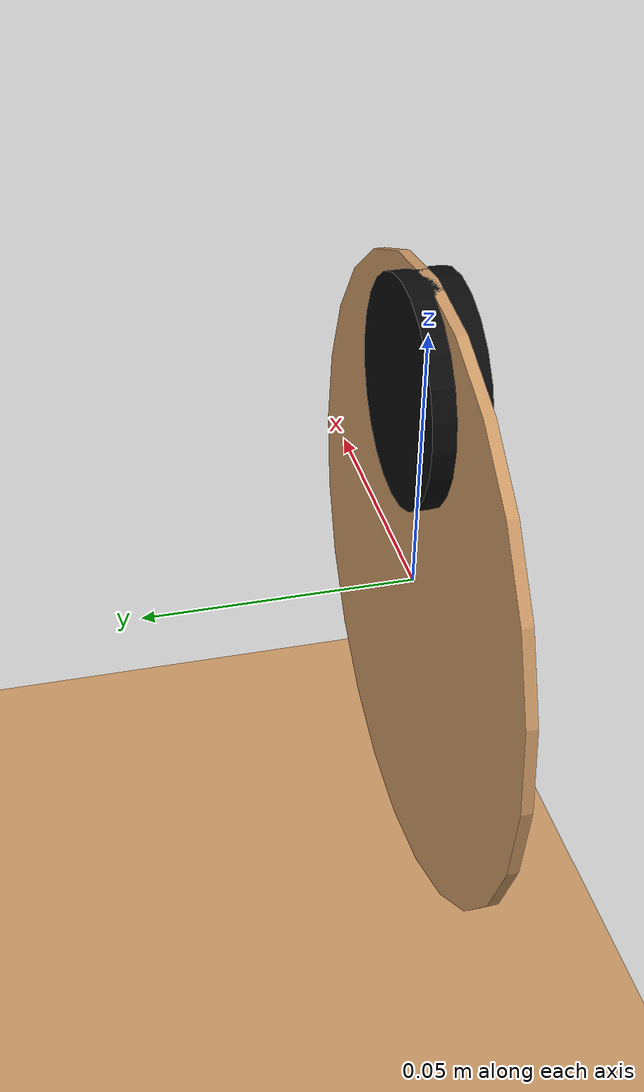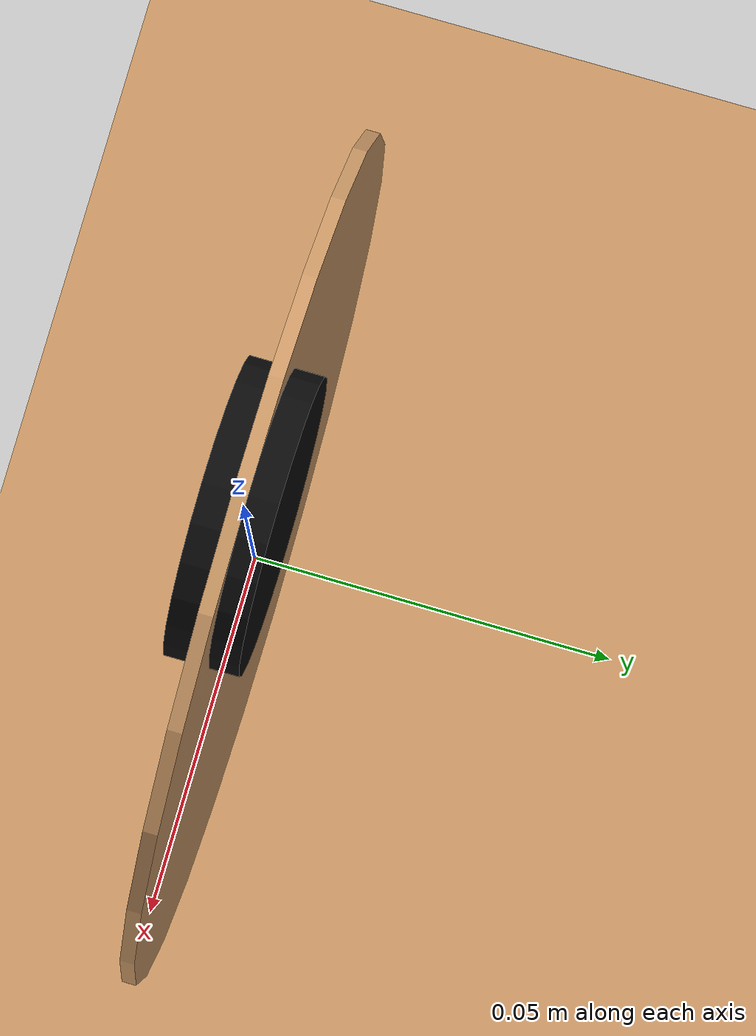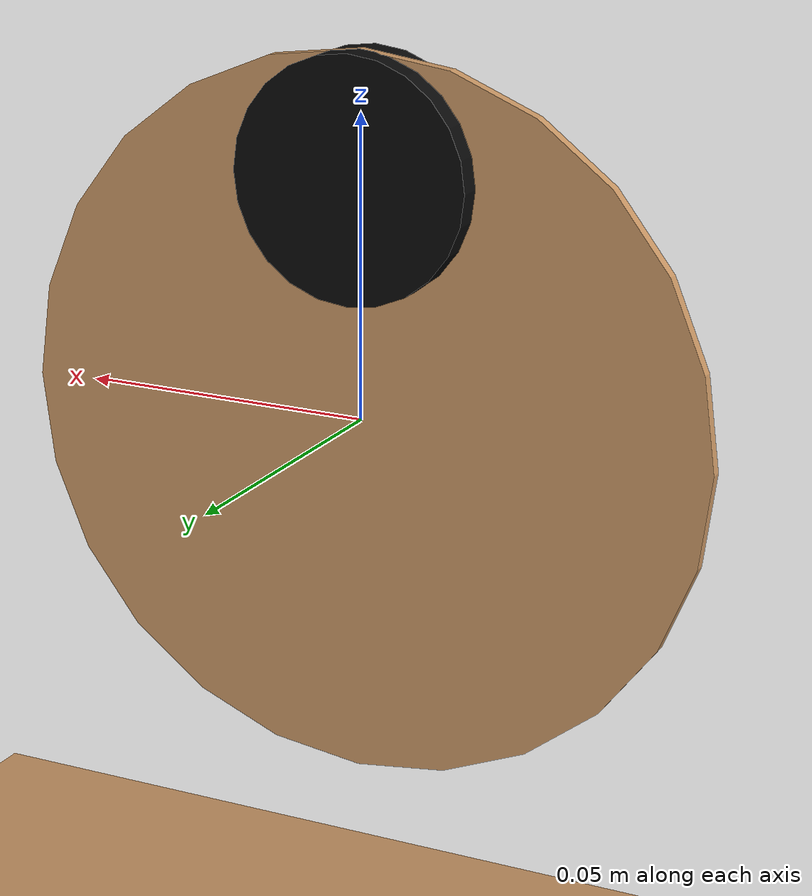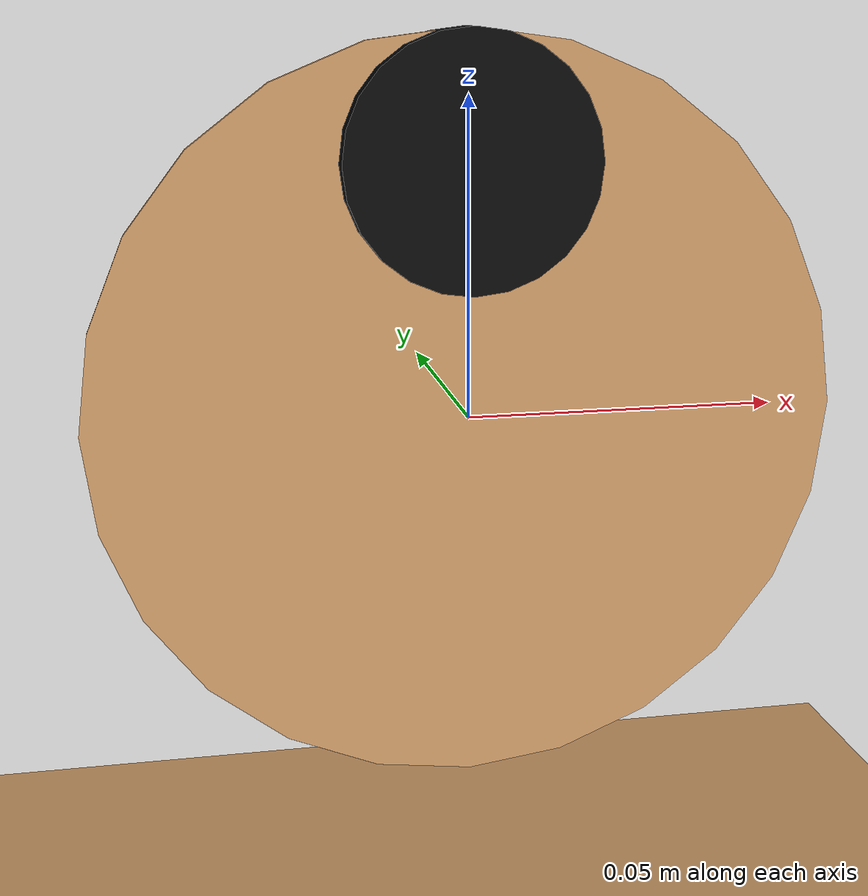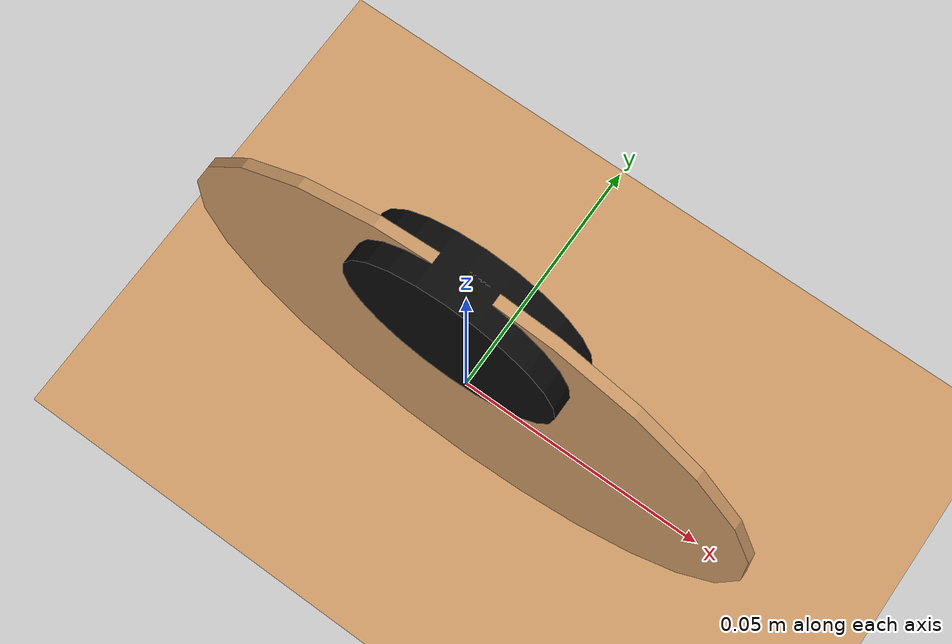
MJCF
<mujoco model="disk_pendulum">
    <compiler inertiafromgeom="auto" angle="radian" coordinate="local" eulerseq="xyz" autolimits="true"/>
    <option gravity="0 0 -9.81" timestep="0.01" iterations="10"/>
    <custom>
        <numeric data="10" name="constraint_ang_damping"/> <!-- positional & spring -->
        <numeric data="1" name="spring_inertia_scale"/>  <!-- positional & spring -->
        <numeric data="0" name="ang_damping"/>  <!-- positional & spring -->
        <numeric data="0" name="spring_mass_scale"/>  <!-- positional & spring -->
        <numeric data="0.5" name="joint_scale_pos"/> <!-- positional -->
        <numeric data="0.1" name="joint_scale_ang"/> <!-- positional -->
        <numeric data="3000" name="constraint_stiffness"/>  <!-- spring -->
        <numeric data="10000" name="constraint_limit_stiffness"/>  <!-- spring -->
        <numeric data="50" name="constraint_vel_damping"/>  <!-- spring -->
        <numeric data="10" name="solver_maxls"/>  <!-- generalized -->
    </custom>

    <asset>
        <texture builtin="flat" height="1278" mark="cross" markrgb="1 1 1" name="texgeom" random="0.01" rgb1="0.8 0.6 0.4" rgb2="0.8 0.6 0.4" type="cube" width="127"/>
        <material name="geom" texture="texgeom" texuniform="true"/>
    </asset>

    <default>
        <geom contype="0" friction="1 0.1 0.1" material="geom"/>
    </default>

    <worldbody>
        <light cutoff="100" diffuse="1 1 1" dir="-0 0 -1.3" directional="true" exponent="1" pos="0 0 1.3" specular=".1 .1 .1"/>
        <geom name="table" type="plane" pos="0 0.0 -0.1" size="1 1 0.1" contype="8" conaffinity="11" condim="3"/>
        <body name="disk" pos="0.0 0.0 0.0" euler="1.5708 0.0 0.0">
            <joint name="hinge_joint" type="hinge" axis="0 0 1" range="-180 180" armature="0.00022993" damping="0.0001" limited="false" frictionloss="123"/>
            <geom name="disk_geom" type="cylinder" size="0.06 0.001" contype="0" conaffinity="0" condim="3" mass="0.0"/>
            <geom name="mass_geom" type="cylinder" size="0.02 0.005" contype="0" conaffinity="0"  condim="3" rgba="0.04 0.04 0.04 1"
                  pos="0.0 0.04 0." mass="0.05085817"/>
        </body>
    </worldbody>

    <actuator>
        <motor joint="hinge_joint" ctrllimited="false" ctrlrange="-3.0 3.0"  gear="0.01"/>
    </actuator>
</mujoco>
